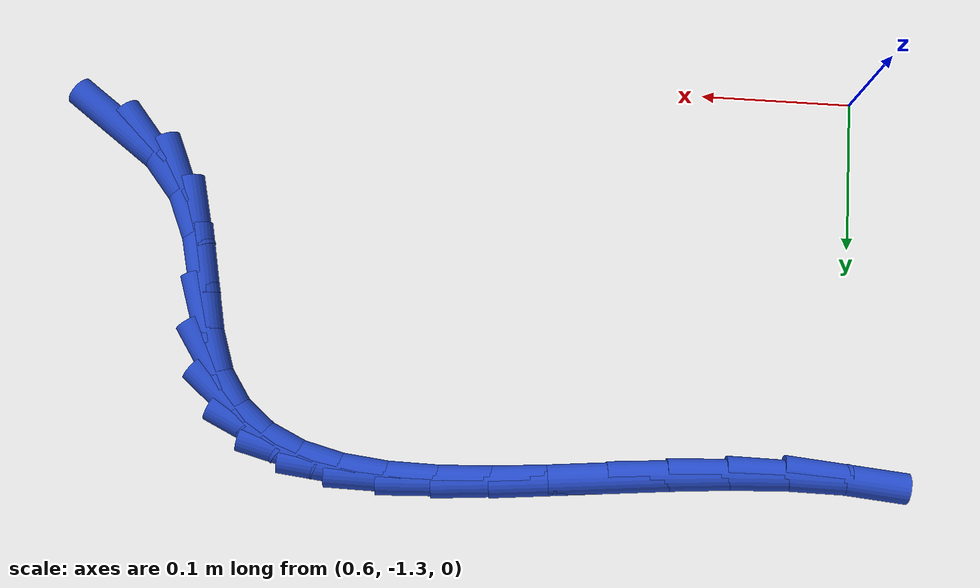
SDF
<sdf version="1.6">
 <world name="default">
  <model name="ground_plane">
   <static>1</static>
   <link name="link">
    <collision name="collision">
     <geometry><plane><normal>0 0 1</normal><size>100 100</size></plane></geometry>
     <surface><friction><ode><mu>100</mu><mu2>50</mu2></ode></friction></surface>
    </collision>
    <visual name="visual">
     <cast_shadows>0</cast_shadows>
     <geometry><plane><normal>0 0 1</normal><size>100 100</size></plane></geometry>
     <material>
      <script><uri>file://media/materials/scripts/gazebo.material</uri><name>Gazebo/WhiteGlow</name></script>
     </material>
    </visual>
   </link>
  </model>
  <model name="line">
   <link name="link_181">
    <pose>1.0875305085777434 -1.2500823201263822 0.01 0 1.57 -0.6313103656061841</pose>
    <collision name="collision">
     <geometry><cylinder><radius>0.01</radius><length>0.08</length></cylinder></geometry>
    </collision>
    <visual name="visual">
     <material>
      <script><name>Gazebo/Blue</name><uri>file://media/materials/scripts/gazebo.material</uri></script>
     </material>
     <geometry><cylinder><radius>0.01</radius><length>0.08</length></cylinder></geometry>
    </visual>
   </link>
   <link name="link_182">
    <pose>1.0621652266761417 -1.2315371634884664 0.01 0 1.57 -0.887768930176225</pose>
    <collision name="collision">
     <geometry><cylinder><radius>0.01</radius><length>0.08</length></cylinder></geometry>
    </collision>
    <visual name="visual">
     <material>
      <script><name>Gazebo/Blue</name><uri>file://media/materials/scripts/gazebo.material</uri></script>
     </material>
     <geometry><cylinder><radius>0.01</radius><length>0.08</length></cylinder></geometry>
    </visual>
   </link>
   <link name="link_183">
    <pose>1.0428863472503358 -1.2078437450743031 0.01 0 1.57 -1.1651060218712799</pose>
    <collision name="collision">
     <geometry><cylinder><radius>0.01</radius><length>0.08</length></cylinder></geometry>
    </collision>
    <visual name="visual">
     <material>
      <script><name>Gazebo/Blue</name><uri>file://media/materials/scripts/gazebo.material</uri></script>
     </material>
     <geometry><cylinder><radius>0.01</radius><length>0.08</length></cylinder></geometry>
    </visual>
   </link>
   <link name="link_184">
    <pose>1.0305153585968814 -1.17904164772175 0.01 0 1.57 -1.339224668610466</pose>
    <collision name="collision">
     <geometry><cylinder><radius>0.01</radius><length>0.08</length></cylinder></geometry>
    </collision>
    <visual name="visual">
     <material>
      <script><name>Gazebo/Blue</name><uri>file://media/materials/scripts/gazebo.material</uri></script>
     </material>
     <geometry><cylinder><radius>0.01</radius><length>0.08</length></cylinder></geometry>
    </visual>
   </link>
   <link name="link_185">
    <pose>1.023024047853272 -1.1472721239518902 0.01 0 1.57 -1.369134877670827</pose>
    <collision name="collision">
     <geometry><cylinder><radius>0.01</radius><length>0.08</length></cylinder></geometry>
    </collision>
    <visual name="visual">
     <material>
      <script><name>Gazebo/Blue</name><uri>file://media/materials/scripts/gazebo.material</uri></script>
     </material>
     <geometry><cylinder><radius>0.01</radius><length>0.08</length></cylinder></geometry>
    </visual>
   </link>
   <link name="link_186">
    <pose>1.016625362802188 -1.1159735796164 0.01 0 1.57 -1.2497987743280041</pose>
    <collision name="collision">
     <geometry><cylinder><radius>0.01</radius><length>0.08</length></cylinder></geometry>
    </collision>
    <visual name="visual">
     <material>
      <script><name>Gazebo/Blue</name><uri>file://media/materials/scripts/gazebo.material</uri></script>
     </material>
     <geometry><cylinder><radius>0.01</radius><length>0.08</length></cylinder></geometry>
    </visual>
   </link>
   <link name="link_187">
    <pose>1.0075204353761218 -1.0885900818172338 0.01 0 1.57 -0.9851156697315632</pose>
    <collision name="collision">
     <geometry><cylinder><radius>0.01</radius><length>0.08</length></cylinder></geometry>
    </collision>
    <visual name="visual">
     <material>
      <script><name>Gazebo/Blue</name><uri>file://media/materials/scripts/gazebo.material</uri></script>
     </material>
     <geometry><cylinder><radius>0.01</radius><length>0.08</length></cylinder></geometry>
    </visual>
   </link>
   <link name="link_188">
    <pose>0.9933360010938145 -1.067206015717773 0.01 0 1.57 -0.6936959186344491</pose>
    <collision name="collision">
     <geometry><cylinder><radius>0.01</radius><length>0.08</length></cylinder></geometry>
    </collision>
    <visual name="visual">
     <material>
      <script><name>Gazebo/Blue</name><uri>file://media/materials/scripts/gazebo.material</uri></script>
     </material>
     <geometry><cylinder><radius>0.01</radius><length>0.08</length></cylinder></geometry>
    </visual>
   </link>
   <link name="link_189">
    <pose>0.9743272055472214 -1.0513988972940702 0.01 0 1.57 -0.4384574517251013</pose>
    <collision name="collision">
     <geometry><cylinder><radius>0.01</radius><length>0.08</length></cylinder></geometry>
    </collision>
    <visual name="visual">
     <material>
      <script><name>Gazebo/Blue</name><uri>file://media/materials/scripts/gazebo.material</uri></script>
     </material>
     <geometry><cylinder><radius>0.01</radius><length>0.08</length></cylinder></geometry>
    </visual>
   </link>
   <link name="link_190">
    <pose>0.9510324777158184 -1.0404760585038275 0.01 0 1.57 -0.24395758266825307</pose>
    <collision name="collision">
     <geometry><cylinder><radius>0.01</radius><length>0.08</length></cylinder></geometry>
    </collision>
    <visual name="visual">
     <material>
      <script><name>Gazebo/Blue</name><uri>file://media/materials/scripts/gazebo.material</uri></script>
     </material>
     <geometry><cylinder><radius>0.01</radius><length>0.08</length></cylinder></geometry>
    </visual>
   </link>
   <link name="link_191">
    <pose>0.9239902465790818 -1.0337448313047466 0.01 0 1.57 -0.10644389673206145</pose>
    <collision name="collision">
     <geometry><cylinder><radius>0.01</radius><length>0.08</length></cylinder></geometry>
    </collision>
    <visual name="visual">
     <material>
      <script><name>Gazebo/Blue</name><uri>file://media/materials/scripts/gazebo.material</uri></script>
     </material>
     <geometry><cylinder><radius>0.01</radius><length>0.08</length></cylinder></geometry>
    </visual>
   </link>
   <link name="link_192">
    <pose>0.8937389411164859 -1.0305125476545294 0.01 0 1.57 -0.012939220135488415</pose>
    <collision name="collision">
     <geometry><cylinder><radius>0.01</radius><length>0.08</length></cylinder></geometry>
    </collision>
    <visual name="visual">
     <material>
      <script><name>Gazebo/Blue</name><uri>file://media/materials/scripts/gazebo.material</uri></script>
     </material>
     <geometry><cylinder><radius>0.01</radius><length>0.08</length></cylinder></geometry>
    </visual>
   </link>
   <link name="link_193">
    <pose>0.8608169903075089 -1.0300865395108771 0.01 0 1.57 0.048105474387342265</pose>
    <collision name="collision">
     <geometry><cylinder><radius>0.01</radius><length>0.08</length></cylinder></geometry>
    </collision>
    <visual name="visual">
     <material>
      <script><name>Gazebo/Blue</name><uri>file://media/materials/scripts/gazebo.material</uri></script>
     </material>
     <geometry><cylinder><radius>0.01</radius><length>0.08</length></cylinder></geometry>
    </visual>
   </link>
   <link name="link_194">
    <pose>0.8257628231316259 -1.0317741388314918 0.01 0 1.57 0.08461906780214053</pose>
    <collision name="collision">
     <geometry><cylinder><radius>0.01</radius><length>0.08</length></cylinder></geometry>
    </collision>
    <visual name="visual">
     <material>
      <script><name>Gazebo/Blue</name><uri>file://media/materials/scripts/gazebo.material</uri></script>
     </material>
     <geometry><cylinder><radius>0.01</radius><length>0.08</length></cylinder></geometry>
    </visual>
   </link>
   <link name="link_195">
    <pose>0.7891148685683124 -1.034882677574075 0.01 0 1.57 0.101414097606737</pose>
    <collision name="collision">
     <geometry><cylinder><radius>0.01</radius><length>0.08</length></cylinder></geometry>
    </collision>
    <visual name="visual">
     <material>
      <script><name>Gazebo/Blue</name><uri>file://media/materials/scripts/gazebo.material</uri></script>
     </material>
     <geometry><cylinder><radius>0.01</radius><length>0.08</length></cylinder></geometry>
    </visual>
   </link>
   <link name="link_196">
    <pose>0.7514115555970443 -1.0387194876963282 0.01 0 1.57 0.1009738189031883</pose>
    <collision name="collision">
     <geometry><cylinder><radius>0.01</radius><length>0.08</length></cylinder></geometry>
    </collision>
    <visual name="visual">
     <material>
      <script><name>Gazebo/Blue</name><uri>file://media/materials/scripts/gazebo.material</uri></script>
     </material>
     <geometry><cylinder><radius>0.01</radius><length>0.08</length></cylinder></geometry>
    </visual>
   </link>
   <link name="link_197">
    <pose>0.7131913131972977 -1.0425919011559526 0.01 0 1.57 0.08397624466680172</pose>
    <collision name="collision">
     <geometry><cylinder><radius>0.01</radius><length>0.08</length></cylinder></geometry>
    </collision>
    <visual name="visual">
     <material>
      <script><name>Gazebo/Blue</name><uri>file://media/materials/scripts/gazebo.material</uri></script>
     </material>
     <geometry><cylinder><radius>0.01</radius><length>0.08</length></cylinder></geometry>
    </visual>
   </link>
   <link name="link_198">
    <pose>0.6749925703485485 -1.045807249910651 0.01 0 1.57 0.04952574793573131</pose>
    <collision name="collision">
     <geometry><cylinder><radius>0.01</radius><length>0.08</length></cylinder></geometry>
    </collision>
    <visual name="visual">
     <material>
      <script><name>Gazebo/Blue</name><uri>file://media/materials/scripts/gazebo.material</uri></script>
     </material>
     <geometry><cylinder><radius>0.01</radius><length>0.08</length></cylinder></geometry>
    </visual>
   </link>
   <link name="link_199">
    <pose>0.6373537560302722 -1.047672865918124 0.01 0 1.57 -0.004838018409994259</pose>
    <collision name="collision">
     <geometry><cylinder><radius>0.01</radius><length>0.08</length></cylinder></geometry>
    </collision>
    <visual name="visual">
     <material>
      <script><name>Gazebo/Blue</name><uri>file://media/materials/scripts/gazebo.material</uri></script>
     </material>
     <geometry><cylinder><radius>0.01</radius><length>0.08</length></cylinder></geometry>
    </visual>
   </link>
   <link name="link_200">
    <pose>0.6008132992219444 -1.0474960811360738 0.01 0 1.57 -0.08323269011744241</pose>
    <collision name="collision">
     <geometry><cylinder><radius>0.01</radius><length>0.08</length></cylinder></geometry>
    </collision>
    <visual name="visual">
     <material>
      <script><name>Gazebo/Blue</name><uri>file://media/materials/scripts/gazebo.material</uri></script>
     </material>
     <geometry><cylinder><radius>0.01</radius><length>0.08</length></cylinder></geometry>
    </visual>
   </link>
  </model>
 </world>
</sdf>
